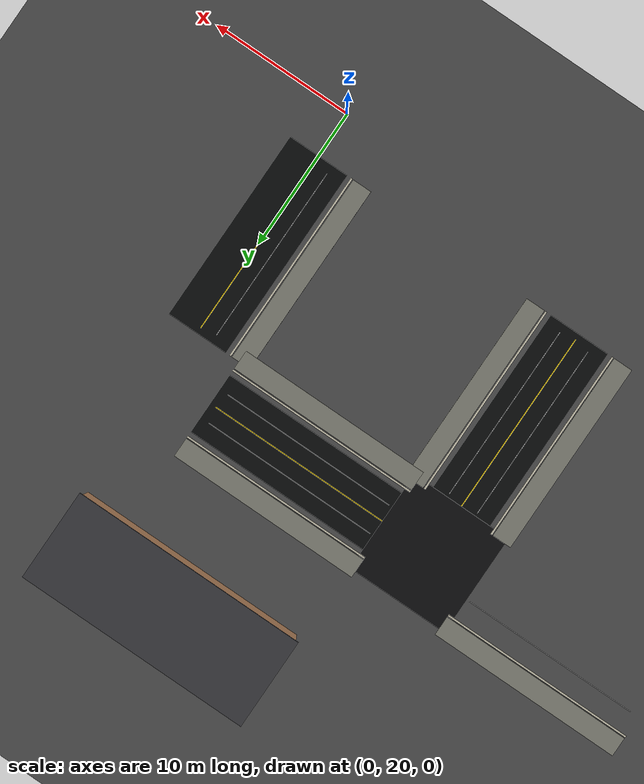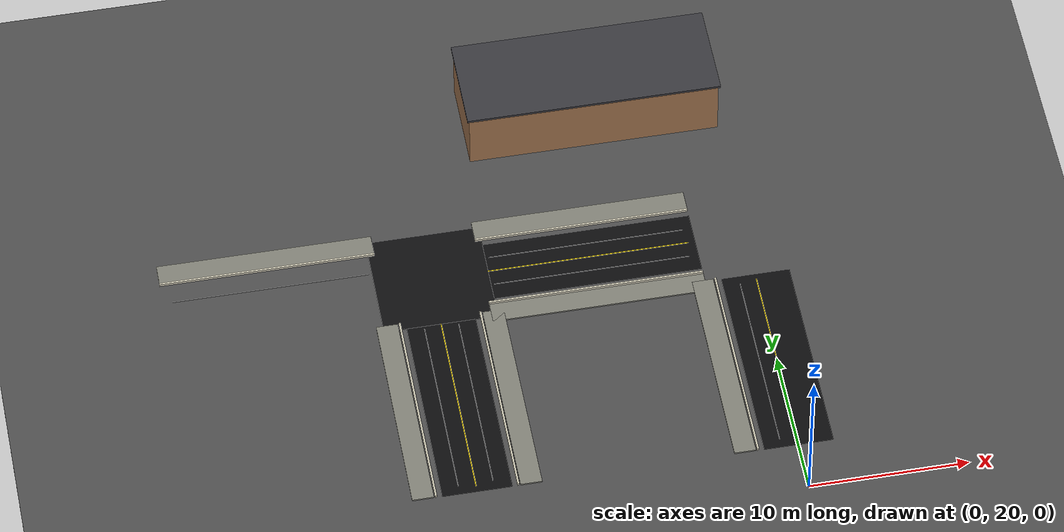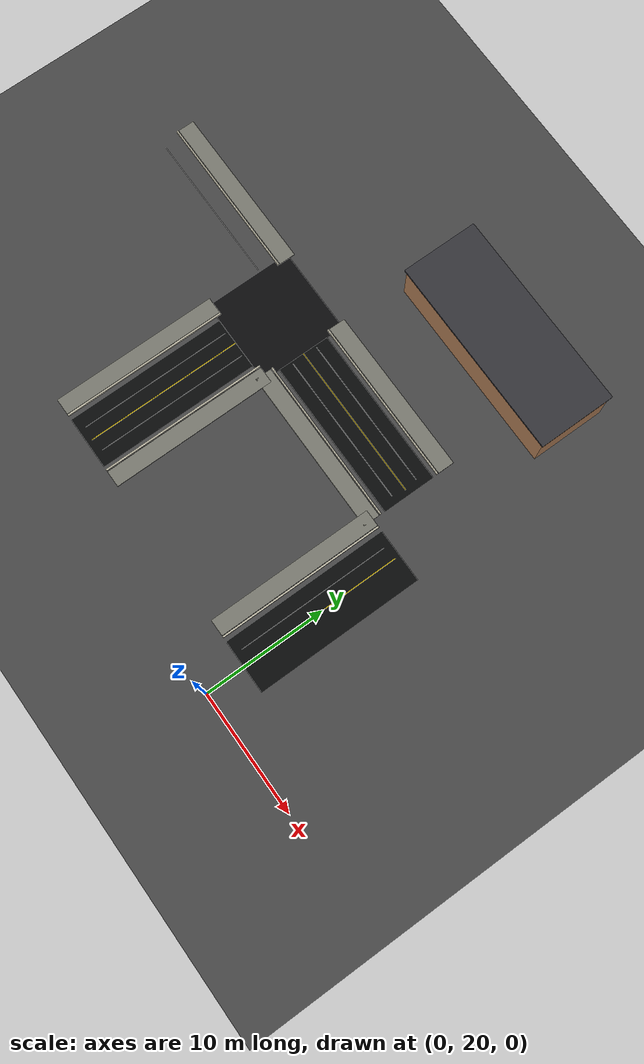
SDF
<sdf version="1.9">
 <world name="smart_city_world">
  <model name="ground">
   <static>true</static>
   <link name="link">
    <collision name="collision"><geometry><box><size>145 145 0.05</size></box></geometry></collision>
    <visual name="visual">
     <geometry><box><size>145 145 0.05</size></box></geometry>
     <material><ambient>0.30 0.30 0.30 1</ambient><diffuse>0.30 0.30 0.30 1</diffuse></material>
    </visual>
   </link>
  </model>
  <model name="sidewalk_e1_L">
   <static>true</static>
   <pose>-30.000 43.350 0.075 0 0 0.000000</pose>
   <link name="link">
    <visual name="visual">
     <geometry><box><size>13.600 1.350 0.100</size></box></geometry>
     <material><ambient>0.5 0.5 0.46 1</ambient><diffuse>0.5 0.5 0.46 1</diffuse></material>
    </visual>
   </link>
  </model>
  <model name="curb_e1_L">
   <static>true</static>
   <pose>-30.000 42.550 0.130 0 0 0.000000</pose>
   <link name="link">
    <visual name="visual">
     <geometry><box><size>13.600 0.120 0.180</size></box></geometry>
     <material><ambient>0.8 0.78 0.7 1</ambient><diffuse>0.8 0.78 0.7 1</diffuse></material>
    </visual>
   </link>
  </model>
  <model name="edge_line_e1_L">
   <static>true</static>
   <pose>-30.000 41.080 0.054 0 0 0.000000</pose>
   <link name="link">
    <visual name="visual">
     <geometry><box><size>12.400 0.035 0.010</size></box></geometry>
     <material><ambient>0.85 0.85 0.85 1</ambient><diffuse>0.85 0.85 0.85 1</diffuse></material>
    </visual>
   </link>
  </model>
  <model name="road_e2">
   <static>true</static>
   <pose>-10.000 40.000 0.018 0 0 0.000000</pose>
   <link name="link">
    <collision name="collision"><geometry><box><size>13.600 4.350 0.030</size></box></geometry></collision>
    <visual name="visual">
     <geometry><box><size>13.600 4.350 0.030</size></box></geometry>
     <material><ambient>0.045 0.047 0.05 1</ambient><diffuse>0.045 0.047 0.05 1</diffuse></material>
    </visual>
   </link>
  </model>
  <model name="center_line_e2">
   <static>true</static>
   <pose>-10.000 40.000 0.052 0 0 0.000000</pose>
   <link name="link">
    <visual name="visual">
     <geometry><box><size>12.800 0.070 0.010</size></box></geometry>
     <material><ambient>1 0.86 0.05 1</ambient><diffuse>1 0.86 0.05 1</diffuse></material>
    </visual>
   </link>
  </model>
  <model name="sidewalk_e2_L">
   <static>true</static>
   <pose>-10.000 43.350 0.075 0 0 0.000000</pose>
   <link name="link">
    <visual name="visual">
     <geometry><box><size>13.600 1.350 0.100</size></box></geometry>
     <material><ambient>0.5 0.5 0.46 1</ambient><diffuse>0.5 0.5 0.46 1</diffuse></material>
    </visual>
   </link>
  </model>
  <model name="curb_e2_L">
   <static>true</static>
   <pose>-10.000 42.550 0.130 0 0 0.000000</pose>
   <link name="link">
    <visual name="visual">
     <geometry><box><size>13.600 0.120 0.180</size></box></geometry>
     <material><ambient>0.8 0.78 0.7 1</ambient><diffuse>0.8 0.78 0.7 1</diffuse></material>
    </visual>
   </link>
  </model>
  <model name="edge_line_e2_L">
   <static>true</static>
   <pose>-10.000 41.080 0.054 0 0 0.000000</pose>
   <link name="link">
    <visual name="visual">
     <geometry><box><size>12.400 0.035 0.010</size></box></geometry>
     <material><ambient>0.85 0.85 0.85 1</ambient><diffuse>0.85 0.85 0.85 1</diffuse></material>
    </visual>
   </link>
  </model>
  <model name="sidewalk_e2_R">
   <static>true</static>
   <pose>-10.000 36.650 0.075 0 0 0.000000</pose>
   <link name="link">
    <visual name="visual">
     <geometry><box><size>13.600 1.350 0.100</size></box></geometry>
     <material><ambient>0.5 0.5 0.46 1</ambient><diffuse>0.5 0.5 0.46 1</diffuse></material>
    </visual>
   </link>
  </model>
  <model name="curb_e2_R">
   <static>true</static>
   <pose>-10.000 37.450 0.130 0 0 0.000000</pose>
   <link name="link">
    <visual name="visual">
     <geometry><box><size>13.600 0.120 0.180</size></box></geometry>
     <material><ambient>0.8 0.78 0.7 1</ambient><diffuse>0.8 0.78 0.7 1</diffuse></material>
    </visual>
   </link>
  </model>
  <model name="edge_line_e2_R">
   <static>true</static>
   <pose>-10.000 38.920 0.054 0 0 0.000000</pose>
   <link name="link">
    <visual name="visual">
     <geometry><box><size>12.400 0.035 0.010</size></box></geometry>
     <material><ambient>0.85 0.85 0.85 1</ambient><diffuse>0.85 0.85 0.85 1</diffuse></material>
    </visual>
   </link>
  </model>
  <model name="road_e25">
   <static>true</static>
   <pose>-20.000 30.000 0.018 0 0 -1.570796</pose>
   <link name="link">
    <collision name="collision"><geometry><box><size>13.600 4.350 0.030</size></box></geometry></collision>
    <visual name="visual">
     <geometry><box><size>13.600 4.350 0.030</size></box></geometry>
     <material><ambient>0.045 0.047 0.05 1</ambient><diffuse>0.045 0.047 0.05 1</diffuse></material>
    </visual>
   </link>
  </model>
  <model name="center_line_e25">
   <static>true</static>
   <pose>-20.000 30.000 0.052 0 0 -1.570796</pose>
   <link name="link">
    <visual name="visual">
     <geometry><box><size>12.800 0.070 0.010</size></box></geometry>
     <material><ambient>1 0.86 0.05 1</ambient><diffuse>1 0.86 0.05 1</diffuse></material>
    </visual>
   </link>
  </model>
  <model name="sidewalk_e25_L">
   <static>true</static>
   <pose>-16.650 30.000 0.075 0 0 -1.570796</pose>
   <link name="link">
    <visual name="visual">
     <geometry><box><size>13.600 1.350 0.100</size></box></geometry>
     <material><ambient>0.5 0.5 0.46 1</ambient><diffuse>0.5 0.5 0.46 1</diffuse></material>
    </visual>
   </link>
  </model>
  <model name="curb_e25_L">
   <static>true</static>
   <pose>-17.450 30.000 0.130 0 0 -1.570796</pose>
   <link name="link">
    <visual name="visual">
     <geometry><box><size>13.600 0.120 0.180</size></box></geometry>
     <material><ambient>0.8 0.78 0.7 1</ambient><diffuse>0.8 0.78 0.7 1</diffuse></material>
    </visual>
   </link>
  </model>
  <model name="edge_line_e25_L">
   <static>true</static>
   <pose>-18.920 30.000 0.054 0 0 -1.570796</pose>
   <link name="link">
    <visual name="visual">
     <geometry><box><size>12.400 0.035 0.010</size></box></geometry>
     <material><ambient>0.85 0.85 0.85 1</ambient><diffuse>0.85 0.85 0.85 1</diffuse></material>
    </visual>
   </link>
  </model>
  <model name="sidewalk_e25_R">
   <static>true</static>
   <pose>-23.350 30.000 0.075 0 0 -1.570796</pose>
   <link name="link">
    <visual name="visual">
     <geometry><box><size>13.600 1.350 0.100</size></box></geometry>
     <material><ambient>0.5 0.5 0.46 1</ambient><diffuse>0.5 0.5 0.46 1</diffuse></material>
    </visual>
   </link>
  </model>
  <model name="curb_e25_R">
   <static>true</static>
   <pose>-22.550 30.000 0.130 0 0 -1.570796</pose>
   <link name="link">
    <visual name="visual">
     <geometry><box><size>13.600 0.120 0.180</size></box></geometry>
     <material><ambient>0.8 0.78 0.7 1</ambient><diffuse>0.8 0.78 0.7 1</diffuse></material>
    </visual>
   </link>
  </model>
  <model name="edge_line_e25_R">
   <static>true</static>
   <pose>-21.080 30.000 0.054 0 0 -1.570796</pose>
   <link name="link">
    <visual name="visual">
     <geometry><box><size>12.400 0.035 0.010</size></box></geometry>
     <material><ambient>0.85 0.85 0.85 1</ambient><diffuse>0.85 0.85 0.85 1</diffuse></material>
    </visual>
   </link>
  </model>
  <model name="road_e29">
   <static>true</static>
   <pose>0.000 30.000 0.018 0 0 -1.570796</pose>
   <link name="link">
    <collision name="collision"><geometry><box><size>13.600 4.350 0.030</size></box></geometry></collision>
    <visual name="visual">
     <geometry><box><size>13.600 4.350 0.030</size></box></geometry>
     <material><ambient>0.045 0.047 0.05 1</ambient><diffuse>0.045 0.047 0.05 1</diffuse></material>
    </visual>
   </link>
  </model>
  <model name="center_line_e29">
   <static>true</static>
   <pose>0.000 30.000 0.052 0 0 -1.570796</pose>
   <link name="link">
    <visual name="visual">
     <geometry><box><size>12.800 0.070 0.010</size></box></geometry>
     <material><ambient>1 0.86 0.05 1</ambient><diffuse>1 0.86 0.05 1</diffuse></material>
    </visual>
   </link>
  </model>
  <model name="sidewalk_e29_R">
   <static>true</static>
   <pose>-3.350 30.000 0.075 0 0 -1.570796</pose>
   <link name="link">
    <visual name="visual">
     <geometry><box><size>13.600 1.350 0.100</size></box></geometry>
     <material><ambient>0.5 0.5 0.46 1</ambient><diffuse>0.5 0.5 0.46 1</diffuse></material>
    </visual>
   </link>
  </model>
  <model name="curb_e29_R">
   <static>true</static>
   <pose>-2.550 30.000 0.130 0 0 -1.570796</pose>
   <link name="link">
    <visual name="visual">
     <geometry><box><size>13.600 0.120 0.180</size></box></geometry>
     <material><ambient>0.8 0.78 0.7 1</ambient><diffuse>0.8 0.78 0.7 1</diffuse></material>
    </visual>
   </link>
  </model>
  <model name="edge_line_e29_R">
   <static>true</static>
   <pose>-1.080 30.000 0.054 0 0 -1.570796</pose>
   <link name="link">
    <visual name="visual">
     <geometry><box><size>12.400 0.035 0.010</size></box></geometry>
     <material><ambient>0.85 0.85 0.85 1</ambient><diffuse>0.85 0.85 0.85 1</diffuse></material>
    </visual>
   </link>
  </model>
  <model name="intersection_plate_n2">
   <static>true</static>
   <pose>-20.000 40.000 0.025 0 0 0.000000</pose>
   <link name="link">
    <collision name="collision"><geometry><box><size>7.200 7.200 0.035</size></box></geometry></collision>
    <visual name="visual">
     <geometry><box><size>7.200 7.200 0.035</size></box></geometry>
     <material><ambient>0.055 0.055 0.058 1</ambient><diffuse>0.055 0.055 0.058 1</diffuse></material>
    </visual>
   </link>
  </model>
  <model name="school">
   <static>true</static>
   <pose>-8.000 52.000 2.000 0 0 0.000000</pose>
   <link name="link">
    <collision name="collision"><geometry><box><size>16.000 6.000 4.000</size></box></geometry></collision>
    <visual name="visual">
     <geometry><box><size>16.000 6.000 4.000</size></box></geometry>
     <material><ambient>0.65 0.47 0.32 1</ambient><diffuse>0.65 0.47 0.32 1</diffuse></material>
    </visual>
   </link>
  </model>
  <model name="school_roof">
   <static>true</static>
   <pose>-8.000 52.000 4.080 0 0 0.000000</pose>
   <link name="link">
    <visual name="visual">
     <geometry><box><size>16.250 6.250 0.160</size></box></geometry>
     <material><ambient>0.22 0.22 0.24 1</ambient><diffuse>0.22 0.22 0.24 1</diffuse></material>
    </visual>
   </link>
  </model>
 </world>
</sdf>
